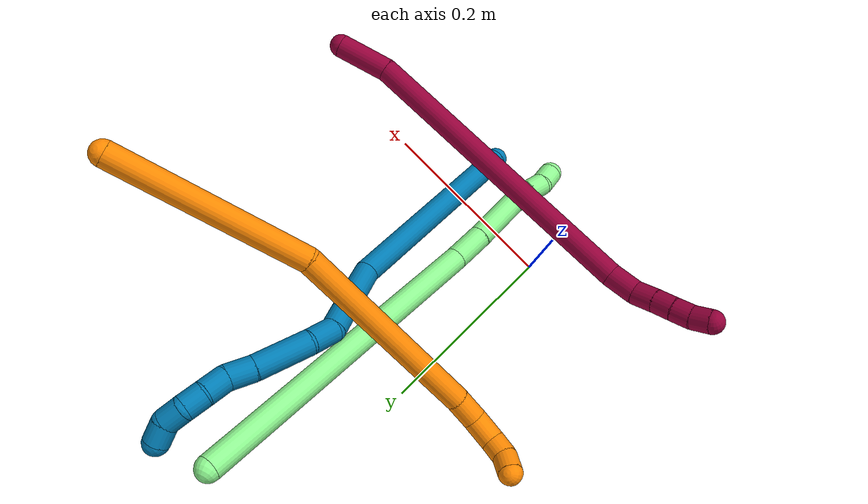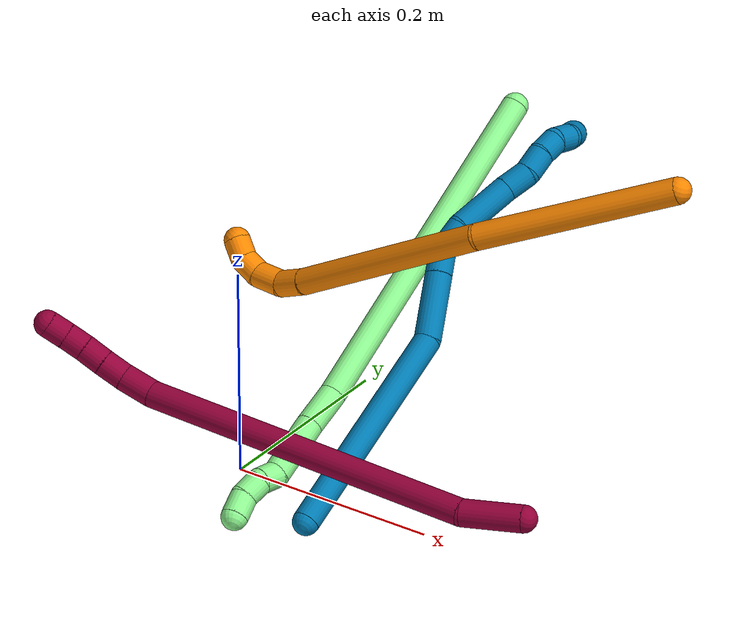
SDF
<sdf version="1.7">
 <world name="default">
  <model name="8">
   <static>0</static>
   <link name="8">
    <collision name="collision-cylinder-e_1_1_4">
     <pose>-0.024145 -0.005072 -0.013574 2.78398 -1.03027 -2.52354</pose>
     <geometry><cylinder><radius>0.0125</radius><length>0.056319</length></cylinder></geometry>
     <surface>
      <friction><ode><mu>1.16</mu><mu2>1.16</mu2><slip1>0</slip1><slip2>0</slip2></ode></friction>
      <contact><ode><kp>1e+06</kp><kd>1</kd><max_vel>0</max_vel><min_depth>0.001</min_depth></ode></contact>
     </surface>
    </collision>
    <visual name="visual-cylinder-e_1_1_4">
     <pose>-0.024145 -0.005072 -0.013574 2.78398 -1.03027 -2.52354</pose>
     <geometry><cylinder><radius>0.0125</radius><length>0.056319</length></cylinder></geometry>
     <material><ambient>0.584314 0 0.227451 1</ambient></material>
    </visual>
    <collision name="collision-cylinder-e_2_4_5">
     <pose>-0.194208 0.008656 -0.099208 -2.88638 -1.09889 2.72851</pose>
     <geometry><cylinder><radius>0.0125</radius><length>0.327646</length></cylinder></geometry>
     <surface>
      <friction><ode><mu>1.16</mu><mu2>1.16</mu2><slip1>0</slip1><slip2>0</slip2></ode></friction>
      <contact><ode><kp>1e+06</kp><kd>1</kd><max_vel>0</max_vel><min_depth>0.001</min_depth></ode></contact>
     </surface>
    </collision>
    <visual name="visual-cylinder-e_2_4_5">
     <pose>-0.194208 0.008656 -0.099208 -2.88638 -1.09889 2.72851</pose>
     <geometry><cylinder><radius>0.0125</radius><length>0.327646</length></cylinder></geometry>
     <material><ambient>0.584314 0 0.227451 1</ambient></material>
    </visual>
    <collision name="collision-cylinder-e_3_5_6">
     <pose>-0.355355 0.029116 -0.174366 -2.65005 -1.34395 2.53065</pose>
     <geometry><cylinder><radius>0.0125</radius><length>0.03126</length></cylinder></geometry>
     <surface>
      <friction><ode><mu>1.16</mu><mu2>1.16</mu2><slip1>0</slip1><slip2>0</slip2></ode></friction>
      <contact><ode><kp>1e+06</kp><kd>1</kd><max_vel>0</max_vel><min_depth>0.001</min_depth></ode></contact>
     </surface>
    </collision>
    <visual name="visual-cylinder-e_3_5_6">
     <pose>-0.355355 0.029116 -0.174366 -2.65005 -1.34395 2.53065</pose>
     <geometry><cylinder><radius>0.0125</radius><length>0.03126</length></cylinder></geometry>
     <material><ambient>0.584314 0 0.227451 1</ambient></material>
    </visual>
    <collision name="collision-cylinder-e_4_6_7">
     <pose>-0.382248 0.030501 -0.176599 0.306279 -1.493 -0.283652</pose>
     <geometry><cylinder><radius>0.0125</radius><length>0.023399</length></cylinder></geometry>
     <surface>
      <friction><ode><mu>1.16</mu><mu2>1.16</mu2><slip1>0</slip1><slip2>0</slip2></ode></friction>
      <contact><ode><kp>1e+06</kp><kd>1</kd><max_vel>0</max_vel><min_depth>0.001</min_depth></ode></contact>
     </surface>
    </collision>
    <visual name="visual-cylinder-e_4_6_7">
     <pose>-0.382248 0.030501 -0.176599 0.306279 -1.493 -0.283652</pose>
     <geometry><cylinder><radius>0.0125</radius><length>0.023399</length></cylinder></geometry>
     <material><ambient>0.584314 0 0.227451 1</ambient></material>
    </visual>
    <collision name="collision-cylinder-e_5_7_8">
     <pose>-0.404431 0.030442 -0.174919 -0.259115 -1.49101 0.239421</pose>
     <geometry><cylinder><radius>0.0125</radius><length>0.021103</length></cylinder></geometry>
     <surface>
      <friction><ode><mu>1.16</mu><mu2>1.16</mu2><slip1>0</slip1><slip2>0</slip2></ode></friction>
      <contact><ode><kp>1e+06</kp><kd>1</kd><max_vel>0</max_vel><min_depth>0.001</min_depth></ode></contact>
     </surface>
    </collision>
    <visual name="visual-cylinder-e_5_7_8">
     <pose>-0.404431 0.030442 -0.174919 -0.259115 -1.49101 0.239421</pose>
     <geometry><cylinder><radius>0.0125</radius><length>0.021103</length></cylinder></geometry>
     <material><ambient>0.584314 0 0.227451 1</ambient></material>
    </visual>
    <collision name="collision-cylinder-e_6_8_9">
     <pose>-0.424996 0.030507 -0.173764 0.415208 -1.53364 -0.400469</pose>
     <geometry><cylinder><radius>0.0125</radius><length>0.02011</length></cylinder></geometry>
     <surface>
      <friction><ode><mu>1.16</mu><mu2>1.16</mu2><slip1>0</slip1><slip2>0</slip2></ode></friction>
      <contact><ode><kp>1e+06</kp><kd>1</kd><max_vel>0</max_vel><min_depth>0.001</min_depth></ode></contact>
     </surface>
    </collision>
    <visual name="visual-cylinder-e_6_8_9">
     <pose>-0.424996 0.030507 -0.173764 0.415208 -1.53364 -0.400469</pose>
     <geometry><cylinder><radius>0.0125</radius><length>0.02011</length></cylinder></geometry>
     <material><ambient>0.584314 0 0.227451 1</ambient></material>
    </visual>
    <collision name="collision-cylinder-e_7_9_2">
     <pose>-0.444846 0.028733 -0.17171 0.758598 -1.33456 -0.60856</pose>
     <geometry><cylinder><radius>0.0125</radius><length>0.020163</length></cylinder></geometry>
     <surface>
      <friction><ode><mu>1.16</mu><mu2>1.16</mu2><slip1>0</slip1><slip2>0</slip2></ode></friction>
      <contact><ode><kp>1e+06</kp><kd>1</kd><max_vel>0</max_vel><min_depth>0.001</min_depth></ode></contact>
     </surface>
    </collision>
    <visual name="visual-cylinder-e_7_9_2">
     <pose>-0.444846 0.028733 -0.17171 0.758598 -1.33456 -0.60856</pose>
     <geometry><cylinder><radius>0.0125</radius><length>0.020163</length></cylinder></geometry>
     <material><ambient>0.584314 0 0.227451 1</ambient></material>
    </visual>
    <collision name="collision-sphere-2">
     <pose>-0.454647 0.02711 -0.169997 0 -0 0</pose>
     <geometry><sphere><radius>0.0125</radius></sphere></geometry>
     <surface>
      <friction><ode><mu>1.16</mu><mu2>1.16</mu2><slip1>0</slip1><slip2>0</slip2></ode></friction>
      <contact><ode><kp>1e+06</kp><kd>1</kd><max_vel>0</max_vel><min_depth>0.001</min_depth></ode></contact>
     </surface>
    </collision>
    <visual name="visual-sphere-2">
     <pose>-0.454647 0.02711 -0.169997 0 -0 0</pose>
     <geometry><sphere><radius>0.0125</radius></sphere></geometry>
     <material><ambient>0.584314 0 0.227451 1</ambient></material>
    </visual>
    <collision name="collision-sphere-9">
     <pose>-0.435045 0.030356 -0.173422 0 -0 0</pose>
     <geometry><sphere><radius>0.0125</radius></sphere></geometry>
     <surface>
      <friction><ode><mu>1.16</mu><mu2>1.16</mu2><slip1>0</slip1><slip2>0</slip2></ode></friction>
      <contact><ode><kp>1e+06</kp><kd>1</kd><max_vel>0</max_vel><min_depth>0.001</min_depth></ode></contact>
     </surface>
    </collision>
    <visual name="visual-sphere-9">
     <pose>-0.435045 0.030356 -0.173422 0 -0 0</pose>
     <geometry><sphere><radius>0.0125</radius></sphere></geometry>
     <material><ambient>0.584314 0 0.227451 1</ambient></material>
    </visual>
    <collision name="collision-sphere-4">
     <pose>-0.04829 -0.010145 -0.027148 0 -0 0</pose>
     <geometry><sphere><radius>0.0125</radius></sphere></geometry>
     <surface>
      <friction><ode><mu>1.16</mu><mu2>1.16</mu2><slip1>0</slip1><slip2>0</slip2></ode></friction>
      <contact><ode><kp>1e+06</kp><kd>1</kd><max_vel>0</max_vel><min_depth>0.001</min_depth></ode></contact>
     </surface>
    </collision>
    <visual name="visual-sphere-4">
     <pose>-0.04829 -0.010145 -0.027148 0 -0 0</pose>
     <geometry><sphere><radius>0.0125</radius></sphere></geometry>
     <material><ambient>0.584314 0 0.227451 1</ambient></material>
    </visual>
    <collision name="collision-sphere-1">
     <geometry><sphere><radius>0.0125</radius></sphere></geometry>
     <surface>
      <friction><ode><mu>1.16</mu><mu2>1.16</mu2><slip1>0</slip1><slip2>0</slip2></ode></friction>
      <contact><ode><kp>1e+06</kp><kd>1</kd><max_vel>0</max_vel><min_depth>0.001</min_depth></ode></contact>
     </surface>
    </collision>
    <visual name="visual-sphere-1">
     <geometry><sphere><radius>0.0125</radius></sphere></geometry>
     <material><ambient>0.584314 0 0.227451 1</ambient></material>
    </visual>
    <collision name="collision-sphere-8">
     <pose>-0.414948 0.030657 -0.174106 0 -0 0</pose>
     <geometry><sphere><radius>0.0125</radius></sphere></geometry>
     <surface>
      <friction><ode><mu>1.16</mu><mu2>1.16</mu2><slip1>0</slip1><slip2>0</slip2></ode></friction>
      <contact><ode><kp>1e+06</kp><kd>1</kd><max_vel>0</max_vel><min_depth>0.001</min_depth></ode></contact>
     </surface>
    </collision>
    <visual name="visual-sphere-8">
     <pose>-0.414948 0.030657 -0.174106 0 -0 0</pose>
     <geometry><sphere><radius>0.0125</radius></sphere></geometry>
     <material><ambient>0.584314 0 0.227451 1</ambient></material>
    </visual>
    <collision name="collision-sphere-5">
     <pose>-0.340125 0.027456 -0.171267 0 -0 0</pose>
     <geometry><sphere><radius>0.0125</radius></sphere></geometry>
     <surface>
      <friction><ode><mu>1.16</mu><mu2>1.16</mu2><slip1>0</slip1><slip2>0</slip2></ode></friction>
      <contact><ode><kp>1e+06</kp><kd>1</kd><max_vel>0</max_vel><min_depth>0.001</min_depth></ode></contact>
     </surface>
    </collision>
    <visual name="visual-sphere-5">
     <pose>-0.340125 0.027456 -0.171267 0 -0 0</pose>
     <geometry><sphere><radius>0.0125</radius></sphere></geometry>
     <material><ambient>0.584314 0 0.227451 1</ambient></material>
    </visual>
    <collision name="collision-sphere-6">
     <pose>-0.370584 0.030775 -0.177465 0 -0 0</pose>
     <geometry><sphere><radius>0.0125</radius></sphere></geometry>
     <surface>
      <friction><ode><mu>1.16</mu><mu2>1.16</mu2><slip1>0</slip1><slip2>0</slip2></ode></friction>
      <contact><ode><kp>1e+06</kp><kd>1</kd><max_vel>0</max_vel><min_depth>0.001</min_depth></ode></contact>
     </surface>
    </collision>
    <visual name="visual-sphere-6">
     <pose>-0.370584 0.030775 -0.177465 0 -0 0</pose>
     <geometry><sphere><radius>0.0125</radius></sphere></geometry>
     <material><ambient>0.584314 0 0.227451 1</ambient></material>
    </visual>
    <collision name="collision-sphere-7">
     <pose>-0.393913 0.030226 -0.175732 0 -0 0</pose>
     <geometry><sphere><radius>0.0125</radius></sphere></geometry>
     <surface>
      <friction><ode><mu>1.16</mu><mu2>1.16</mu2><slip1>0</slip1><slip2>0</slip2></ode></friction>
      <contact><ode><kp>1e+06</kp><kd>1</kd><max_vel>0</max_vel><min_depth>0.001</min_depth></ode></contact>
     </surface>
    </collision>
    <visual name="visual-sphere-7">
     <pose>-0.393913 0.030226 -0.175732 0 -0 0</pose>
     <geometry><sphere><radius>0.0125</radius></sphere></geometry>
     <material><ambient>0.584314 0 0.227451 1</ambient></material>
    </visual>
    <inertial>
     <pose>-0.222189 0.012019 -0.107 0 -0 0</pose>
     <mass>0.5</mass>
     <inertia>
      <ixx>-0.000736</ixx>
      <ixy>0</ixy>
      <ixz>0</ixz>
      <iyy>0.003435</iyy>
      <iyz>0</iyz>
      <izz>0.002299</izz>
     </inertia>
    </inertial>
   </link>
   <pose>0.315136 -0.016576 0.063373 0.245841 0.47462 0.247326</pose>
  </model>
  <model name="9">
   <static>0</static>
   <link name="9">
    <collision name="collision-cylinder-e_1_1_4">
     <pose>0.000724 0.019752 0.106603 -0.183209 0.006674 -0.000613</pose>
     <geometry><cylinder><radius>0.0125</radius><length>0.216839</length></cylinder></geometry>
     <surface>
      <friction><ode><mu>1.16</mu><mu2>1.16</mu2><slip1>0</slip1><slip2>0</slip2></ode></friction>
      <contact><ode><kp>1e+06</kp><kd>1</kd><max_vel>0</max_vel><min_depth>0.001</min_depth></ode></contact>
     </surface>
    </collision>
    <visual name="visual-cylinder-e_1_1_4">
     <pose>0.000724 0.019752 0.106603 -0.183209 0.006674 -0.000613</pose>
     <geometry><cylinder><radius>0.0125</radius><length>0.216839</length></cylinder></geometry>
     <material><ambient>0 0.490196 0.709804 1</ambient></material>
    </visual>
    <collision name="collision-cylinder-e_2_4_5">
     <pose>0.01436 0.044448 0.241824 -0.171054 0.418369 -0.036398</pose>
     <geometry><cylinder><radius>0.0125</radius><length>0.063566</length></cylinder></geometry>
     <surface>
      <friction><ode><mu>1.16</mu><mu2>1.16</mu2><slip1>0</slip1><slip2>0</slip2></ode></friction>
      <contact><ode><kp>1e+06</kp><kd>1</kd><max_vel>0</max_vel><min_depth>0.001</min_depth></ode></contact>
     </surface>
    </collision>
    <visual name="visual-cylinder-e_2_4_5">
     <pose>0.01436 0.044448 0.241824 -0.171054 0.418369 -0.036398</pose>
     <geometry><cylinder><radius>0.0125</radius><length>0.063566</length></cylinder></geometry>
     <material><ambient>0 0.490196 0.709804 1</ambient></material>
    </visual>
    <collision name="collision-cylinder-e_3_5_6">
     <pose>0.032144 0.050999 0.281536 -0.143897 0.409983 -0.029967</pose>
     <geometry><cylinder><radius>0.0125</radius><length>0.024445</length></cylinder></geometry>
     <surface>
      <friction><ode><mu>1.16</mu><mu2>1.16</mu2><slip1>0</slip1><slip2>0</slip2></ode></friction>
      <contact><ode><kp>1e+06</kp><kd>1</kd><max_vel>0</max_vel><min_depth>0.001</min_depth></ode></contact>
     </surface>
    </collision>
    <visual name="visual-cylinder-e_3_5_6">
     <pose>0.032144 0.050999 0.281536 -0.143897 0.409983 -0.029967</pose>
     <geometry><cylinder><radius>0.0125</radius><length>0.024445</length></cylinder></geometry>
     <material><ambient>0 0.490196 0.709804 1</ambient></material>
    </visual>
    <collision name="collision-cylinder-e_4_6_7">
     <pose>0.037502 0.058813 0.305444 -0.451077 0.034143 -0.007835</pose>
     <geometry><cylinder><radius>0.0125</radius><length>0.028494</length></cylinder></geometry>
     <surface>
      <friction><ode><mu>1.16</mu><mu2>1.16</mu2><slip1>0</slip1><slip2>0</slip2></ode></friction>
      <contact><ode><kp>1e+06</kp><kd>1</kd><max_vel>0</max_vel><min_depth>0.001</min_depth></ode></contact>
     </surface>
    </collision>
    <visual name="visual-cylinder-e_4_6_7">
     <pose>0.037502 0.058813 0.305444 -0.451077 0.034143 -0.007835</pose>
     <geometry><cylinder><radius>0.0125</radius><length>0.028494</length></cylinder></geometry>
     <material><ambient>0 0.490196 0.709804 1</ambient></material>
    </visual>
    <collision name="collision-cylinder-e_5_7_8">
     <pose>0.032248 0.075373 0.343913 -0.383542 -0.204606 0.039859</pose>
     <geometry><cylinder><radius>0.0125</radius><length>0.056507</length></cylinder></geometry>
     <surface>
      <friction><ode><mu>1.16</mu><mu2>1.16</mu2><slip1>0</slip1><slip2>0</slip2></ode></friction>
      <contact><ode><kp>1e+06</kp><kd>1</kd><max_vel>0</max_vel><min_depth>0.001</min_depth></ode></contact>
     </surface>
    </collision>
    <visual name="visual-cylinder-e_5_7_8">
     <pose>0.032248 0.075373 0.343913 -0.383542 -0.204606 0.039859</pose>
     <geometry><cylinder><radius>0.0125</radius><length>0.056507</length></cylinder></geometry>
     <material><ambient>0 0.490196 0.709804 1</ambient></material>
    </visual>
    <collision name="collision-cylinder-e_6_8_9">
     <pose>0.023152 0.09156 0.380707 -0.482517 -0.260716 0.064493</pose>
     <geometry><cylinder><radius>0.0125</radius><length>0.026031</length></cylinder></geometry>
     <surface>
      <friction><ode><mu>1.16</mu><mu2>1.16</mu2><slip1>0</slip1><slip2>0</slip2></ode></friction>
      <contact><ode><kp>1e+06</kp><kd>1</kd><max_vel>0</max_vel><min_depth>0.001</min_depth></ode></contact>
     </surface>
    </collision>
    <visual name="visual-cylinder-e_6_8_9">
     <pose>0.023152 0.09156 0.380707 -0.482517 -0.260716 0.064493</pose>
     <geometry><cylinder><radius>0.0125</radius><length>0.026031</length></cylinder></geometry>
     <material><ambient>0 0.490196 0.709804 1</ambient></material>
    </visual>
    <collision name="collision-cylinder-e_7_9_10">
     <pose>0.019903 0.100717 0.403209 -0.284446 0.008951 -0.001282</pose>
     <geometry><cylinder><radius>0.0125</radius><length>0.023677</length></cylinder></geometry>
     <surface>
      <friction><ode><mu>1.16</mu><mu2>1.16</mu2><slip1>0</slip1><slip2>0</slip2></ode></friction>
      <contact><ode><kp>1e+06</kp><kd>1</kd><max_vel>0</max_vel><min_depth>0.001</min_depth></ode></contact>
     </surface>
    </collision>
    <visual name="visual-cylinder-e_7_9_10">
     <pose>0.019903 0.100717 0.403209 -0.284446 0.008951 -0.001282</pose>
     <geometry><cylinder><radius>0.0125</radius><length>0.023677</length></cylinder></geometry>
     <material><ambient>0 0.490196 0.709804 1</ambient></material>
    </visual>
    <collision name="collision-cylinder-e_8_10_11">
     <pose>0.018266 0.105874 0.424384 -0.184866 -0.172847 0.016062</pose>
     <geometry><cylinder><radius>0.0125</radius><length>0.020267</length></cylinder></geometry>
     <surface>
      <friction><ode><mu>1.16</mu><mu2>1.16</mu2><slip1>0</slip1><slip2>0</slip2></ode></friction>
      <contact><ode><kp>1e+06</kp><kd>1</kd><max_vel>0</max_vel><min_depth>0.001</min_depth></ode></contact>
     </surface>
    </collision>
    <visual name="visual-cylinder-e_8_10_11">
     <pose>0.018266 0.105874 0.424384 -0.184866 -0.172847 0.016062</pose>
     <geometry><cylinder><radius>0.0125</radius><length>0.020267</length></cylinder></geometry>
     <material><ambient>0 0.490196 0.709804 1</ambient></material>
    </visual>
    <collision name="collision-cylinder-e_9_11_12">
     <pose>0.011225 0.106733 0.442717 0.114157 -0.553417 -0.032452</pose>
     <geometry><cylinder><radius>0.0125</radius><length>0.02016</length></cylinder></geometry>
     <surface>
      <friction><ode><mu>1.16</mu><mu2>1.16</mu2><slip1>0</slip1><slip2>0</slip2></ode></friction>
      <contact><ode><kp>1e+06</kp><kd>1</kd><max_vel>0</max_vel><min_depth>0.001</min_depth></ode></contact>
     </surface>
    </collision>
    <visual name="visual-cylinder-e_9_11_12">
     <pose>0.011225 0.106733 0.442717 0.114157 -0.553417 -0.032452</pose>
     <geometry><cylinder><radius>0.0125</radius><length>0.02016</length></cylinder></geometry>
     <material><ambient>0 0.490196 0.709804 1</ambient></material>
    </visual>
    <collision name="collision-cylinder-e_10_12_2">
     <pose>0.002933 0.100708 0.45934 0.557118 -0.303837 -0.087515</pose>
     <geometry><cylinder><radius>0.0125</radius><length>0.020012</length></cylinder></geometry>
     <surface>
      <friction><ode><mu>1.16</mu><mu2>1.16</mu2><slip1>0</slip1><slip2>0</slip2></ode></friction>
      <contact><ode><kp>1e+06</kp><kd>1</kd><max_vel>0</max_vel><min_depth>0.001</min_depth></ode></contact>
     </surface>
    </collision>
    <visual name="visual-cylinder-e_10_12_2">
     <pose>0.002933 0.100708 0.45934 0.557118 -0.303837 -0.087515</pose>
     <geometry><cylinder><radius>0.0125</radius><length>0.020012</length></cylinder></geometry>
     <material><ambient>0 0.490196 0.709804 1</ambient></material>
    </visual>
    <collision name="collision-sphere-2">
     <pose>-6e-05 0.095659 0.467444 0 -0 0</pose>
     <geometry><sphere><radius>0.0125</radius></sphere></geometry>
     <surface>
      <friction><ode><mu>1.16</mu><mu2>1.16</mu2><slip1>0</slip1><slip2>0</slip2></ode></friction>
      <contact><ode><kp>1e+06</kp><kd>1</kd><max_vel>0</max_vel><min_depth>0.001</min_depth></ode></contact>
     </surface>
    </collision>
    <visual name="visual-sphere-2">
     <pose>-6e-05 0.095659 0.467444 0 -0 0</pose>
     <geometry><sphere><radius>0.0125</radius></sphere></geometry>
     <material><ambient>0 0.490196 0.709804 1</ambient></material>
    </visual>
    <collision name="collision-sphere-12">
     <pose>0.005927 0.105756 0.451236 0 -0 0</pose>
     <geometry><sphere><radius>0.0125</radius></sphere></geometry>
     <surface>
      <friction><ode><mu>1.16</mu><mu2>1.16</mu2><slip1>0</slip1><slip2>0</slip2></ode></friction>
      <contact><ode><kp>1e+06</kp><kd>1</kd><max_vel>0</max_vel><min_depth>0.001</min_depth></ode></contact>
     </surface>
    </collision>
    <visual name="visual-sphere-12">
     <pose>0.005927 0.105756 0.451236 0 -0 0</pose>
     <geometry><sphere><radius>0.0125</radius></sphere></geometry>
     <material><ambient>0 0.490196 0.709804 1</ambient></material>
    </visual>
    <collision name="collision-sphere-11">
     <pose>0.016523 0.107709 0.434197 0 -0 0</pose>
     <geometry><sphere><radius>0.0125</radius></sphere></geometry>
     <surface>
      <friction><ode><mu>1.16</mu><mu2>1.16</mu2><slip1>0</slip1><slip2>0</slip2></ode></friction>
      <contact><ode><kp>1e+06</kp><kd>1</kd><max_vel>0</max_vel><min_depth>0.001</min_depth></ode></contact>
     </surface>
    </collision>
    <visual name="visual-sphere-11">
     <pose>0.016523 0.107709 0.434197 0 -0 0</pose>
     <geometry><sphere><radius>0.0125</radius></sphere></geometry>
     <material><ambient>0 0.490196 0.709804 1</ambient></material>
    </visual>
    <collision name="collision-sphere-10">
     <pose>0.020009 0.10404 0.414572 0 -0 0</pose>
     <geometry><sphere><radius>0.0125</radius></sphere></geometry>
     <surface>
      <friction><ode><mu>1.16</mu><mu2>1.16</mu2><slip1>0</slip1><slip2>0</slip2></ode></friction>
      <contact><ode><kp>1e+06</kp><kd>1</kd><max_vel>0</max_vel><min_depth>0.001</min_depth></ode></contact>
     </surface>
    </collision>
    <visual name="visual-sphere-10">
     <pose>0.020009 0.10404 0.414572 0 -0 0</pose>
     <geometry><sphere><radius>0.0125</radius></sphere></geometry>
     <material><ambient>0 0.490196 0.709804 1</ambient></material>
    </visual>
    <collision name="collision-sphere-9">
     <pose>0.019797 0.097395 0.391847 0 -0 0</pose>
     <geometry><sphere><radius>0.0125</radius></sphere></geometry>
     <surface>
      <friction><ode><mu>1.16</mu><mu2>1.16</mu2><slip1>0</slip1><slip2>0</slip2></ode></friction>
      <contact><ode><kp>1e+06</kp><kd>1</kd><max_vel>0</max_vel><min_depth>0.001</min_depth></ode></contact>
     </surface>
    </collision>
    <visual name="visual-sphere-9">
     <pose>0.019797 0.097395 0.391847 0 -0 0</pose>
     <geometry><sphere><radius>0.0125</radius></sphere></geometry>
     <material><ambient>0 0.490196 0.709804 1</ambient></material>
    </visual>
    <collision name="collision-sphere-4">
     <pose>0.001447 0.039504 0.213206 0 -0 0</pose>
     <geometry><sphere><radius>0.0125</radius></sphere></geometry>
     <surface>
      <friction><ode><mu>1.16</mu><mu2>1.16</mu2><slip1>0</slip1><slip2>0</slip2></ode></friction>
      <contact><ode><kp>1e+06</kp><kd>1</kd><max_vel>0</max_vel><min_depth>0.001</min_depth></ode></contact>
     </surface>
    </collision>
    <visual name="visual-sphere-4">
     <pose>0.001447 0.039504 0.213206 0 -0 0</pose>
     <geometry><sphere><radius>0.0125</radius></sphere></geometry>
     <material><ambient>0 0.490196 0.709804 1</ambient></material>
    </visual>
    <collision name="collision-sphere-1">
     <geometry><sphere><radius>0.0125</radius></sphere></geometry>
     <surface>
      <friction><ode><mu>1.16</mu><mu2>1.16</mu2><slip1>0</slip1><slip2>0</slip2></ode></friction>
      <contact><ode><kp>1e+06</kp><kd>1</kd><max_vel>0</max_vel><min_depth>0.001</min_depth></ode></contact>
     </surface>
    </collision>
    <visual name="visual-sphere-1">
     <geometry><sphere><radius>0.0125</radius></sphere></geometry>
     <material><ambient>0 0.490196 0.709804 1</ambient></material>
    </visual>
    <collision name="collision-sphere-8">
     <pose>0.026507 0.085725 0.369567 0 -0 0</pose>
     <geometry><sphere><radius>0.0125</radius></sphere></geometry>
     <surface>
      <friction><ode><mu>1.16</mu><mu2>1.16</mu2><slip1>0</slip1><slip2>0</slip2></ode></friction>
      <contact><ode><kp>1e+06</kp><kd>1</kd><max_vel>0</max_vel><min_depth>0.001</min_depth></ode></contact>
     </surface>
    </collision>
    <visual name="visual-sphere-8">
     <pose>0.026507 0.085725 0.369567 0 -0 0</pose>
     <geometry><sphere><radius>0.0125</radius></sphere></geometry>
     <material><ambient>0 0.490196 0.709804 1</ambient></material>
    </visual>
    <collision name="collision-sphere-5">
     <pose>0.027272 0.049391 0.270442 0 -0 0</pose>
     <geometry><sphere><radius>0.0125</radius></sphere></geometry>
     <surface>
      <friction><ode><mu>1.16</mu><mu2>1.16</mu2><slip1>0</slip1><slip2>0</slip2></ode></friction>
      <contact><ode><kp>1e+06</kp><kd>1</kd><max_vel>0</max_vel><min_depth>0.001</min_depth></ode></contact>
     </surface>
    </collision>
    <visual name="visual-sphere-5">
     <pose>0.027272 0.049391 0.270442 0 -0 0</pose>
     <geometry><sphere><radius>0.0125</radius></sphere></geometry>
     <material><ambient>0 0.490196 0.709804 1</ambient></material>
    </visual>
    <collision name="collision-sphere-6">
     <pose>0.037016 0.052606 0.292629 0 -0 0</pose>
     <geometry><sphere><radius>0.0125</radius></sphere></geometry>
     <surface>
      <friction><ode><mu>1.16</mu><mu2>1.16</mu2><slip1>0</slip1><slip2>0</slip2></ode></friction>
      <contact><ode><kp>1e+06</kp><kd>1</kd><max_vel>0</max_vel><min_depth>0.001</min_depth></ode></contact>
     </surface>
    </collision>
    <visual name="visual-sphere-6">
     <pose>0.037016 0.052606 0.292629 0 -0 0</pose>
     <geometry><sphere><radius>0.0125</radius></sphere></geometry>
     <material><ambient>0 0.490196 0.709804 1</ambient></material>
    </visual>
    <collision name="collision-sphere-7">
     <pose>0.037989 0.06502 0.318258 0 -0 0</pose>
     <geometry><sphere><radius>0.0125</radius></sphere></geometry>
     <surface>
      <friction><ode><mu>1.16</mu><mu2>1.16</mu2><slip1>0</slip1><slip2>0</slip2></ode></friction>
      <contact><ode><kp>1e+06</kp><kd>1</kd><max_vel>0</max_vel><min_depth>0.001</min_depth></ode></contact>
     </surface>
    </collision>
    <visual name="visual-sphere-7">
     <pose>0.037989 0.06502 0.318258 0 -0 0</pose>
     <geometry><sphere><radius>0.0125</radius></sphere></geometry>
     <material><ambient>0 0.490196 0.709804 1</ambient></material>
    </visual>
    <inertial>
     <pose>0.012951 0.050742 0.239365 0 -0 0</pose>
     <mass>0.5</mass>
     <inertia>
      <ixx>0.00091</ixx>
      <ixy>0</ixy>
      <ixz>0</ixz>
      <iyy>0.000903</iyy>
      <iyz>0</iyz>
      <izz>-0.000143</izz>
     </inertia>
    </inertial>
   </link>
   <pose>0.113657 -0.058278 0.012508 1.13224 -0.75678 -2.67267</pose>
  </model>
  <model name="13">
   <static>0</static>
   <link name="13">
    <collision name="collision-cylinder-e_1_1_4">
     <pose>-0.034142 -0.038258 -0.16053 2.90763 -0.204009 -1.43315</pose>
     <geometry><cylinder><radius>0.0125</radius><length>0.337042</length></cylinder></geometry>
     <surface>
      <friction><ode><mu>1.16</mu><mu2>1.16</mu2><slip1>0</slip1><slip2>0</slip2></ode></friction>
      <contact><ode><kp>1e+06</kp><kd>1</kd><max_vel>0</max_vel><min_depth>0.001</min_depth></ode></contact>
     </surface>
    </collision>
    <visual name="visual-cylinder-e_1_1_4">
     <pose>-0.034142 -0.038258 -0.16053 2.90763 -0.204009 -1.43315</pose>
     <geometry><cylinder><radius>0.0125</radius><length>0.337042</length></cylinder></geometry>
     <material><ambient>0.564706 0.984314 0.572549 1</ambient></material>
    </visual>
    <collision name="collision-cylinder-e_2_4_5">
     <pose>-0.069395 -0.082617 -0.339866 2.82788 -0.056162 -0.351534</pose>
     <geometry><cylinder><radius>0.0125</radius><length>0.039603</length></cylinder></geometry>
     <surface>
      <friction><ode><mu>1.16</mu><mu2>1.16</mu2><slip1>0</slip1><slip2>0</slip2></ode></friction>
      <contact><ode><kp>1e+06</kp><kd>1</kd><max_vel>0</max_vel><min_depth>0.001</min_depth></ode></contact>
     </surface>
    </collision>
    <visual name="visual-cylinder-e_2_4_5">
     <pose>-0.069395 -0.082617 -0.339866 2.82788 -0.056162 -0.351534</pose>
     <geometry><cylinder><radius>0.0125</radius><length>0.039603</length></cylinder></geometry>
     <material><ambient>0.564706 0.984314 0.572549 1</ambient></material>
    </visual>
    <collision name="collision-cylinder-e_3_5_6">
     <pose>-0.071944 -0.09672 -0.3878 2.87351 -0.047544 -0.349053</pose>
     <geometry><cylinder><radius>0.0125</radius><length>0.060483</length></cylinder></geometry>
     <surface>
      <friction><ode><mu>1.16</mu><mu2>1.16</mu2><slip1>0</slip1><slip2>0</slip2></ode></friction>
      <contact><ode><kp>1e+06</kp><kd>1</kd><max_vel>0</max_vel><min_depth>0.001</min_depth></ode></contact>
     </surface>
    </collision>
    <visual name="visual-cylinder-e_3_5_6">
     <pose>-0.071944 -0.09672 -0.3878 2.87351 -0.047544 -0.349053</pose>
     <geometry><cylinder><radius>0.0125</radius><length>0.060483</length></cylinder></geometry>
     <material><ambient>0.564706 0.984314 0.572549 1</ambient></material>
    </visual>
    <collision name="collision-cylinder-e_4_6_7">
     <pose>-0.071007 -0.111422 -0.424787 2.43552 0.225982 0.597481</pose>
     <geometry><cylinder><radius>0.0125</radius><length>0.021194</length></cylinder></geometry>
     <surface>
      <friction><ode><mu>1.16</mu><mu2>1.16</mu2><slip1>0</slip1><slip2>0</slip2></ode></friction>
      <contact><ode><kp>1e+06</kp><kd>1</kd><max_vel>0</max_vel><min_depth>0.001</min_depth></ode></contact>
     </surface>
    </collision>
    <visual name="visual-cylinder-e_4_6_7">
     <pose>-0.071007 -0.111422 -0.424787 2.43552 0.225982 0.597481</pose>
     <geometry><cylinder><radius>0.0125</radius><length>0.021194</length></cylinder></geometry>
     <material><ambient>0.564706 0.984314 0.572549 1</ambient></material>
    </visual>
    <collision name="collision-cylinder-e_5_7_8">
     <pose>-0.070483 -0.122599 -0.441627 2.67931 -0.182381 -0.741186</pose>
     <geometry><cylinder><radius>0.0125</radius><length>0.020407</length></cylinder></geometry>
     <surface>
      <friction><ode><mu>1.16</mu><mu2>1.16</mu2><slip1>0</slip1><slip2>0</slip2></ode></friction>
      <contact><ode><kp>1e+06</kp><kd>1</kd><max_vel>0</max_vel><min_depth>0.001</min_depth></ode></contact>
     </surface>
    </collision>
    <visual name="visual-cylinder-e_5_7_8">
     <pose>-0.070483 -0.122599 -0.441627 2.67931 -0.182381 -0.741186</pose>
     <geometry><cylinder><radius>0.0125</radius><length>0.020407</length></cylinder></geometry>
     <material><ambient>0.564706 0.984314 0.572549 1</ambient></material>
    </visual>
    <collision name="collision-cylinder-e_6_8_2">
     <pose>-0.073719 -0.128273 -0.461084 3.0276 -0.130684 -1.7074</pose>
     <geometry><cylinder><radius>0.0125</radius><length>0.02127</length></cylinder></geometry>
     <surface>
      <friction><ode><mu>1.16</mu><mu2>1.16</mu2><slip1>0</slip1><slip2>0</slip2></ode></friction>
      <contact><ode><kp>1e+06</kp><kd>1</kd><max_vel>0</max_vel><min_depth>0.001</min_depth></ode></contact>
     </surface>
    </collision>
    <visual name="visual-cylinder-e_6_8_2">
     <pose>-0.073719 -0.128273 -0.461084 3.0276 -0.130684 -1.7074</pose>
     <geometry><cylinder><radius>0.0125</radius><length>0.02127</length></cylinder></geometry>
     <material><ambient>0.564706 0.984314 0.572549 1</ambient></material>
    </visual>
    <collision name="collision-sphere-2">
     <pose>-0.075105 -0.129473 -0.47156 0 -0 0</pose>
     <geometry><sphere><radius>0.0125</radius></sphere></geometry>
     <surface>
      <friction><ode><mu>1.16</mu><mu2>1.16</mu2><slip1>0</slip1><slip2>0</slip2></ode></friction>
      <contact><ode><kp>1e+06</kp><kd>1</kd><max_vel>0</max_vel><min_depth>0.001</min_depth></ode></contact>
     </surface>
    </collision>
    <visual name="visual-sphere-2">
     <pose>-0.075105 -0.129473 -0.47156 0 -0 0</pose>
     <geometry><sphere><radius>0.0125</radius></sphere></geometry>
     <material><ambient>0.564706 0.984314 0.572549 1</ambient></material>
    </visual>
    <collision name="collision-sphere-4">
     <pose>-0.068284 -0.076516 -0.321061 0 -0 0</pose>
     <geometry><sphere><radius>0.0125</radius></sphere></geometry>
     <surface>
      <friction><ode><mu>1.16</mu><mu2>1.16</mu2><slip1>0</slip1><slip2>0</slip2></ode></friction>
      <contact><ode><kp>1e+06</kp><kd>1</kd><max_vel>0</max_vel><min_depth>0.001</min_depth></ode></contact>
     </surface>
    </collision>
    <visual name="visual-sphere-4">
     <pose>-0.068284 -0.076516 -0.321061 0 -0 0</pose>
     <geometry><sphere><radius>0.0125</radius></sphere></geometry>
     <material><ambient>0.564706 0.984314 0.572549 1</ambient></material>
    </visual>
    <collision name="collision-sphere-1">
     <geometry><sphere><radius>0.0125</radius></sphere></geometry>
     <surface>
      <friction><ode><mu>1.16</mu><mu2>1.16</mu2><slip1>0</slip1><slip2>0</slip2></ode></friction>
      <contact><ode><kp>1e+06</kp><kd>1</kd><max_vel>0</max_vel><min_depth>0.001</min_depth></ode></contact>
     </surface>
    </collision>
    <visual name="visual-sphere-1">
     <geometry><sphere><radius>0.0125</radius></sphere></geometry>
     <material><ambient>0.564706 0.984314 0.572549 1</ambient></material>
    </visual>
    <collision name="collision-sphere-8">
     <pose>-0.072334 -0.127074 -0.450608 0 -0 0</pose>
     <geometry><sphere><radius>0.0125</radius></sphere></geometry>
     <surface>
      <friction><ode><mu>1.16</mu><mu2>1.16</mu2><slip1>0</slip1><slip2>0</slip2></ode></friction>
      <contact><ode><kp>1e+06</kp><kd>1</kd><max_vel>0</max_vel><min_depth>0.001</min_depth></ode></contact>
     </surface>
    </collision>
    <visual name="visual-sphere-8">
     <pose>-0.072334 -0.127074 -0.450608 0 -0 0</pose>
     <geometry><sphere><radius>0.0125</radius></sphere></geometry>
     <material><ambient>0.564706 0.984314 0.572549 1</ambient></material>
    </visual>
    <collision name="collision-sphere-5">
     <pose>-0.070507 -0.088719 -0.358672 0 -0 0</pose>
     <geometry><sphere><radius>0.0125</radius></sphere></geometry>
     <surface>
      <friction><ode><mu>1.16</mu><mu2>1.16</mu2><slip1>0</slip1><slip2>0</slip2></ode></friction>
      <contact><ode><kp>1e+06</kp><kd>1</kd><max_vel>0</max_vel><min_depth>0.001</min_depth></ode></contact>
     </surface>
    </collision>
    <visual name="visual-sphere-5">
     <pose>-0.070507 -0.088719 -0.358672 0 -0 0</pose>
     <geometry><sphere><radius>0.0125</radius></sphere></geometry>
     <material><ambient>0.564706 0.984314 0.572549 1</ambient></material>
    </visual>
    <collision name="collision-sphere-6">
     <pose>-0.073381 -0.104721 -0.416928 0 -0 0</pose>
     <geometry><sphere><radius>0.0125</radius></sphere></geometry>
     <surface>
      <friction><ode><mu>1.16</mu><mu2>1.16</mu2><slip1>0</slip1><slip2>0</slip2></ode></friction>
      <contact><ode><kp>1e+06</kp><kd>1</kd><max_vel>0</max_vel><min_depth>0.001</min_depth></ode></contact>
     </surface>
    </collision>
    <visual name="visual-sphere-6">
     <pose>-0.073381 -0.104721 -0.416928 0 -0 0</pose>
     <geometry><sphere><radius>0.0125</radius></sphere></geometry>
     <material><ambient>0.564706 0.984314 0.572549 1</ambient></material>
    </visual>
    <collision name="collision-sphere-7">
     <pose>-0.068632 -0.118123 -0.432645 0 -0 0</pose>
     <geometry><sphere><radius>0.0125</radius></sphere></geometry>
     <surface>
      <friction><ode><mu>1.16</mu><mu2>1.16</mu2><slip1>0</slip1><slip2>0</slip2></ode></friction>
      <contact><ode><kp>1e+06</kp><kd>1</kd><max_vel>0</max_vel><min_depth>0.001</min_depth></ode></contact>
     </surface>
    </collision>
    <visual name="visual-sphere-7">
     <pose>-0.068632 -0.118123 -0.432645 0 -0 0</pose>
     <geometry><sphere><radius>0.0125</radius></sphere></geometry>
     <material><ambient>0.564706 0.984314 0.572549 1</ambient></material>
    </visual>
    <inertial>
     <pose>-0.046236 -0.059217 -0.237687 0 -0 0</pose>
     <mass>0.5</mass>
     <inertia>
      <ixx>-0.002666</ixx>
      <ixy>0</ixy>
      <ixz>0</ixz>
      <iyy>-0.003434</iyy>
      <iyz>0</iyz>
      <izz>0.00135</izz>
     </inertia>
    </inertial>
   </link>
   <pose>0.065304 0.348418 0.243846 -0.705896 -0.902575 -0.411692</pose>
  </model>
  <model name="19">
   <static>0</static>
   <link name="19">
    <collision name="collision-cylinder-e_1_1_4">
     <pose>-0.073588 -0.021036 -0.060877 2.80889 -0.851816 -2.43268</pose>
     <geometry><cylinder><radius>0.0125</radius><length>0.195588</length></cylinder></geometry>
     <surface>
      <friction><ode><mu>1.16</mu><mu2>1.16</mu2><slip1>0</slip1><slip2>0</slip2></ode></friction>
      <contact><ode><kp>1e+06</kp><kd>1</kd><max_vel>0</max_vel><min_depth>0.001</min_depth></ode></contact>
     </surface>
    </collision>
    <visual name="visual-cylinder-e_1_1_4">
     <pose>-0.073588 -0.021036 -0.060877 2.80889 -0.851816 -2.43268</pose>
     <geometry><cylinder><radius>0.0125</radius><length>0.195588</length></cylinder></geometry>
     <material><ambient>0.996078 0.537255 0 1</ambient></material>
    </visual>
    <collision name="collision-cylinder-e_2_4_5">
     <pose>-0.223856 -0.035247 -0.191792 -3.04447 -0.828289 2.92137</pose>
     <geometry><cylinder><radius>0.0125</radius><length>0.208153</length></cylinder></geometry>
     <surface>
      <friction><ode><mu>1.16</mu><mu2>1.16</mu2><slip1>0</slip1><slip2>0</slip2></ode></friction>
      <contact><ode><kp>1e+06</kp><kd>1</kd><max_vel>0</max_vel><min_depth>0.001</min_depth></ode></contact>
     </surface>
    </collision>
    <visual name="visual-cylinder-e_2_4_5">
     <pose>-0.223856 -0.035247 -0.191792 -3.04447 -0.828289 2.92137</pose>
     <geometry><cylinder><radius>0.0125</radius><length>0.208153</length></cylinder></geometry>
     <material><ambient>0.996078 0.537255 0 1</ambient></material>
    </visual>
    <collision name="collision-cylinder-e_3_5_6">
     <pose>-0.311677 -0.026613 -0.269925 -2.92157 -0.930765 2.70856</pose>
     <geometry><cylinder><radius>0.0125</radius><length>0.027778</length></cylinder></geometry>
     <surface>
      <friction><ode><mu>1.16</mu><mu2>1.16</mu2><slip1>0</slip1><slip2>0</slip2></ode></friction>
      <contact><ode><kp>1e+06</kp><kd>1</kd><max_vel>0</max_vel><min_depth>0.001</min_depth></ode></contact>
     </surface>
    </collision>
    <visual name="visual-cylinder-e_3_5_6">
     <pose>-0.311677 -0.026613 -0.269925 -2.92157 -0.930765 2.70856</pose>
     <geometry><cylinder><radius>0.0125</radius><length>0.027778</length></cylinder></geometry>
     <material><ambient>0.996078 0.537255 0 1</ambient></material>
    </visual>
    <collision name="collision-cylinder-e_4_6_7">
     <pose>-0.336497 -0.02343 -0.281005 -2.71054 -1.33507 2.59977</pose>
     <geometry><cylinder><radius>0.0125</radius><length>0.028137</length></cylinder></geometry>
     <surface>
      <friction><ode><mu>1.16</mu><mu2>1.16</mu2><slip1>0</slip1><slip2>0</slip2></ode></friction>
      <contact><ode><kp>1e+06</kp><kd>1</kd><max_vel>0</max_vel><min_depth>0.001</min_depth></ode></contact>
     </surface>
    </collision>
    <visual name="visual-cylinder-e_4_6_7">
     <pose>-0.336497 -0.02343 -0.281005 -2.71054 -1.33507 2.59977</pose>
     <geometry><cylinder><radius>0.0125</radius><length>0.028137</length></cylinder></geometry>
     <material><ambient>0.996078 0.537255 0 1</ambient></material>
    </visual>
    <collision name="collision-cylinder-e_5_7_8">
     <pose>-0.359957 -0.021687 -0.281795 -0.167297 -1.34703 0.133614</pose>
     <geometry><cylinder><radius>0.0125</radius><length>0.020062</length></cylinder></geometry>
     <surface>
      <friction><ode><mu>1.16</mu><mu2>1.16</mu2><slip1>0</slip1><slip2>0</slip2></ode></friction>
      <contact><ode><kp>1e+06</kp><kd>1</kd><max_vel>0</max_vel><min_depth>0.001</min_depth></ode></contact>
     </surface>
    </collision>
    <visual name="visual-cylinder-e_5_7_8">
     <pose>-0.359957 -0.021687 -0.281795 -0.167297 -1.34703 0.133614</pose>
     <geometry><cylinder><radius>0.0125</radius><length>0.020062</length></cylinder></geometry>
     <material><ambient>0.996078 0.537255 0 1</ambient></material>
    </visual>
    <collision name="collision-cylinder-e_6_8_2">
     <pose>-0.377943 -0.018957 -0.274127 -0.40699 -0.942541 0.209529</pose>
     <geometry><cylinder><radius>0.0125</radius><length>0.020283</length></cylinder></geometry>
     <surface>
      <friction><ode><mu>1.16</mu><mu2>1.16</mu2><slip1>0</slip1><slip2>0</slip2></ode></friction>
      <contact><ode><kp>1e+06</kp><kd>1</kd><max_vel>0</max_vel><min_depth>0.001</min_depth></ode></contact>
     </surface>
    </collision>
    <visual name="visual-cylinder-e_6_8_2">
     <pose>-0.377943 -0.018957 -0.274127 -0.40699 -0.942541 0.209529</pose>
     <geometry><cylinder><radius>0.0125</radius><length>0.020283</length></cylinder></geometry>
     <material><ambient>0.996078 0.537255 0 1</ambient></material>
    </visual>
    <collision name="collision-sphere-2">
     <pose>-0.386148 -0.016597 -0.268654 0 -0 0</pose>
     <geometry><sphere><radius>0.0125</radius></sphere></geometry>
     <surface>
      <friction><ode><mu>1.16</mu><mu2>1.16</mu2><slip1>0</slip1><slip2>0</slip2></ode></friction>
      <contact><ode><kp>1e+06</kp><kd>1</kd><max_vel>0</max_vel><min_depth>0.001</min_depth></ode></contact>
     </surface>
    </collision>
    <visual name="visual-sphere-2">
     <pose>-0.386148 -0.016597 -0.268654 0 -0 0</pose>
     <geometry><sphere><radius>0.0125</radius></sphere></geometry>
     <material><ambient>0.996078 0.537255 0 1</ambient></material>
    </visual>
    <collision name="collision-sphere-4">
     <pose>-0.147175 -0.042071 -0.121754 0 -0 0</pose>
     <geometry><sphere><radius>0.0125</radius></sphere></geometry>
     <surface>
      <friction><ode><mu>1.16</mu><mu2>1.16</mu2><slip1>0</slip1><slip2>0</slip2></ode></friction>
      <contact><ode><kp>1e+06</kp><kd>1</kd><max_vel>0</max_vel><min_depth>0.001</min_depth></ode></contact>
     </surface>
    </collision>
    <visual name="visual-sphere-4">
     <pose>-0.147175 -0.042071 -0.121754 0 -0 0</pose>
     <geometry><sphere><radius>0.0125</radius></sphere></geometry>
     <material><ambient>0.996078 0.537255 0 1</ambient></material>
    </visual>
    <collision name="collision-sphere-1">
     <geometry><sphere><radius>0.0125</radius></sphere></geometry>
     <surface>
      <friction><ode><mu>1.16</mu><mu2>1.16</mu2><slip1>0</slip1><slip2>0</slip2></ode></friction>
      <contact><ode><kp>1e+06</kp><kd>1</kd><max_vel>0</max_vel><min_depth>0.001</min_depth></ode></contact>
     </surface>
    </collision>
    <visual name="visual-sphere-1">
     <geometry><sphere><radius>0.0125</radius></sphere></geometry>
     <material><ambient>0.996078 0.537255 0 1</ambient></material>
    </visual>
    <collision name="collision-sphere-8">
     <pose>-0.369738 -0.021316 -0.279601 0 -0 0</pose>
     <geometry><sphere><radius>0.0125</radius></sphere></geometry>
     <surface>
      <friction><ode><mu>1.16</mu><mu2>1.16</mu2><slip1>0</slip1><slip2>0</slip2></ode></friction>
      <contact><ode><kp>1e+06</kp><kd>1</kd><max_vel>0</max_vel><min_depth>0.001</min_depth></ode></contact>
     </surface>
    </collision>
    <visual name="visual-sphere-8">
     <pose>-0.369738 -0.021316 -0.279601 0 -0 0</pose>
     <geometry><sphere><radius>0.0125</radius></sphere></geometry>
     <material><ambient>0.996078 0.537255 0 1</ambient></material>
    </visual>
    <collision name="collision-sphere-5">
     <pose>-0.300537 -0.028424 -0.26183 0 -0 0</pose>
     <geometry><sphere><radius>0.0125</radius></sphere></geometry>
     <surface>
      <friction><ode><mu>1.16</mu><mu2>1.16</mu2><slip1>0</slip1><slip2>0</slip2></ode></friction>
      <contact><ode><kp>1e+06</kp><kd>1</kd><max_vel>0</max_vel><min_depth>0.001</min_depth></ode></contact>
     </surface>
    </collision>
    <visual name="visual-sphere-5">
     <pose>-0.300537 -0.028424 -0.26183 0 -0 0</pose>
     <geometry><sphere><radius>0.0125</radius></sphere></geometry>
     <material><ambient>0.996078 0.537255 0 1</ambient></material>
    </visual>
    <collision name="collision-sphere-6">
     <pose>-0.322817 -0.024803 -0.27802 0 -0 0</pose>
     <geometry><sphere><radius>0.0125</radius></sphere></geometry>
     <surface>
      <friction><ode><mu>1.16</mu><mu2>1.16</mu2><slip1>0</slip1><slip2>0</slip2></ode></friction>
      <contact><ode><kp>1e+06</kp><kd>1</kd><max_vel>0</max_vel><min_depth>0.001</min_depth></ode></contact>
     </surface>
    </collision>
    <visual name="visual-sphere-6">
     <pose>-0.322817 -0.024803 -0.27802 0 -0 0</pose>
     <geometry><sphere><radius>0.0125</radius></sphere></geometry>
     <material><ambient>0.996078 0.537255 0 1</ambient></material>
    </visual>
    <collision name="collision-sphere-7">
     <pose>-0.350176 -0.022057 -0.28399 0 -0 0</pose>
     <geometry><sphere><radius>0.0125</radius></sphere></geometry>
     <surface>
      <friction><ode><mu>1.16</mu><mu2>1.16</mu2><slip1>0</slip1><slip2>0</slip2></ode></friction>
      <contact><ode><kp>1e+06</kp><kd>1</kd><max_vel>0</max_vel><min_depth>0.001</min_depth></ode></contact>
     </surface>
    </collision>
    <visual name="visual-sphere-7">
     <pose>-0.350176 -0.022057 -0.28399 0 -0 0</pose>
     <geometry><sphere><radius>0.0125</radius></sphere></geometry>
     <material><ambient>0.996078 0.537255 0 1</ambient></material>
    </visual>
    <inertial>
     <pose>-0.188004 -0.027338 -0.156894 0 -0 0</pose>
     <mass>0.5</mass>
     <inertia>
      <ixx>-0.001005</ixx>
      <ixy>0</ixy>
      <ixz>0</ixz>
      <iyy>0.001154</iyy>
      <iyz>0</iyz>
      <izz>0.001106</izz>
     </inertia>
    </inertial>
   </link>
   <pose>0.312594 0.230973 0.277247 -0.197774 0.251224 -0.027471</pose>
  </model>
 </world>
</sdf>
